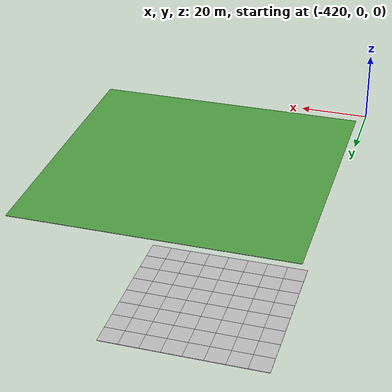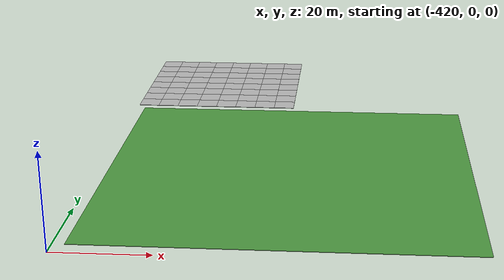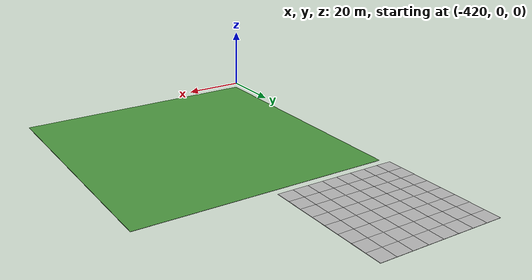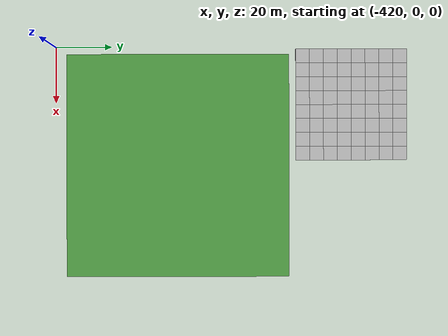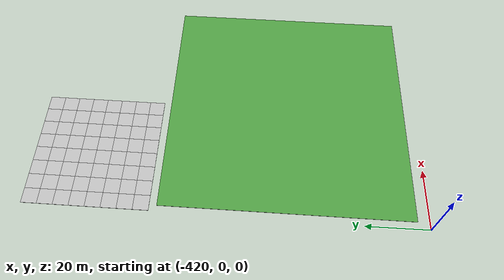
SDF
<sdf version="1.7">
 <world name="default">
  <model name="grass_plane_80x80">
   <pose>-377.556 43.6378 -0.05 0 -0 0</pose>
   <static>1</static>
   <link name="link">
    <collision name="collision"><geometry><box><size>80 80 0.1</size></box></geometry></collision>
    <visual name="grass">
     <cast_shadows>0</cast_shadows>
     <geometry><box><size>80 80 0.1</size></box></geometry>
     <material>
      <script><uri>file://media/materials/scripts/gazebo.material</uri><name>Gazebo/Grass</name></script>
     </material>
    </visual>
   </link>
  </model>
  <model name="mud_plane_40x40_18">
   <model name="mud_plane_20x20">
    <model name="mud_plane">
     <static>1</static>
     <link name="link">
      <collision name="collision"><geometry><box><size>10 10 0.1</size></box></geometry></collision>
      <visual name="visual_1">
       <pose>-2.5 2.5 -0.05 0 -0 0</pose>
       <cast_shadows>0</cast_shadows>
       <geometry><box><size>5 5 0.1</size></box></geometry>
       <material>
        <script>
         <uri>model://mud_plane/materials/scripts</uri>
         <uri>model://mud_plane/materials/textures</uri>
         <name>vrc/mud</name>
        </script>
       </material>
      </visual>
      <visual name="visual_2">
       <pose>2.5 2.5 -0.05 0 -0 0</pose>
       <cast_shadows>0</cast_shadows>
       <geometry><box><size>5 5 0.1</size></box></geometry>
       <material>
        <script>
         <uri>model://mud_plane/materials/scripts</uri>
         <uri>model://mud_plane/materials/textures</uri>
         <name>vrc/mud</name>
        </script>
       </material>
      </visual>
      <visual name="visual_3">
       <pose>2.5 -2.5 -0.05 0 -0 0</pose>
       <cast_shadows>0</cast_shadows>
       <geometry><box><size>5 5 0.1</size></box></geometry>
       <material>
        <script>
         <uri>model://mud_plane/materials/scripts</uri>
         <uri>model://mud_plane/materials/textures</uri>
         <name>vrc/mud</name>
        </script>
       </material>
      </visual>
      <visual name="visual_4">
       <pose>-2.5 -2.5 -0.05 0 -0 0</pose>
       <cast_shadows>0</cast_shadows>
       <geometry><box><size>5 5 0.1</size></box></geometry>
       <material>
        <script>
         <uri>model://mud_plane/materials/scripts</uri>
         <uri>model://mud_plane/materials/textures</uri>
         <name>vrc/mud</name>
        </script>
       </material>
      </visual>
     </link>
     <pose>-4.99986 -4.99991 0 0 -0 0</pose>
    </model>
    <model name="mud_plane_0">
     <static>1</static>
     <link name="link">
      <collision name="collision"><geometry><box><size>10 10 0.1</size></box></geometry></collision>
      <visual name="visual_1">
       <pose>-2.5 2.5 -0.05 0 -0 0</pose>
       <cast_shadows>0</cast_shadows>
       <geometry><box><size>5 5 0.1</size></box></geometry>
       <material>
        <script>
         <uri>model://mud_plane/materials/scripts</uri>
         <uri>model://mud_plane/materials/textures</uri>
         <name>vrc/mud</name>
        </script>
       </material>
      </visual>
      <visual name="visual_2">
       <pose>2.5 2.5 -0.05 0 -0 0</pose>
       <cast_shadows>0</cast_shadows>
       <geometry><box><size>5 5 0.1</size></box></geometry>
       <material>
        <script>
         <uri>model://mud_plane/materials/scripts</uri>
         <uri>model://mud_plane/materials/textures</uri>
         <name>vrc/mud</name>
        </script>
       </material>
      </visual>
      <visual name="visual_3">
       <pose>2.5 -2.5 -0.05 0 -0 0</pose>
       <cast_shadows>0</cast_shadows>
       <geometry><box><size>5 5 0.1</size></box></geometry>
       <material>
        <script>
         <uri>model://mud_plane/materials/scripts</uri>
         <uri>model://mud_plane/materials/textures</uri>
         <name>vrc/mud</name>
        </script>
       </material>
      </visual>
      <visual name="visual_4">
       <pose>-2.5 -2.5 -0.05 0 -0 0</pose>
       <cast_shadows>0</cast_shadows>
       <geometry><box><size>5 5 0.1</size></box></geometry>
       <material>
        <script>
         <uri>model://mud_plane/materials/scripts</uri>
         <uri>model://mud_plane/materials/textures</uri>
         <name>vrc/mud</name>
        </script>
       </material>
      </visual>
     </link>
     <pose>-4.99946 4.99954 0 0 -0 0</pose>
    </model>
    <model name="mud_plane_1">
     <static>1</static>
     <link name="link">
      <collision name="collision"><geometry><box><size>10 10 0.1</size></box></geometry></collision>
      <visual name="visual_1">
       <pose>-2.5 2.5 -0.05 0 -0 0</pose>
       <cast_shadows>0</cast_shadows>
       <geometry><box><size>5 5 0.1</size></box></geometry>
       <material>
        <script>
         <uri>model://mud_plane/materials/scripts</uri>
         <uri>model://mud_plane/materials/textures</uri>
         <name>vrc/mud</name>
        </script>
       </material>
      </visual>
      <visual name="visual_2">
       <pose>2.5 2.5 -0.05 0 -0 0</pose>
       <cast_shadows>0</cast_shadows>
       <geometry><box><size>5 5 0.1</size></box></geometry>
       <material>
        <script>
         <uri>model://mud_plane/materials/scripts</uri>
         <uri>model://mud_plane/materials/textures</uri>
         <name>vrc/mud</name>
        </script>
       </material>
      </visual>
      <visual name="visual_3">
       <pose>2.5 -2.5 -0.05 0 -0 0</pose>
       <cast_shadows>0</cast_shadows>
       <geometry><box><size>5 5 0.1</size></box></geometry>
       <material>
        <script>
         <uri>model://mud_plane/materials/scripts</uri>
         <uri>model://mud_plane/materials/textures</uri>
         <name>vrc/mud</name>
        </script>
       </material>
      </visual>
      <visual name="visual_4">
       <pose>-2.5 -2.5 -0.05 0 -0 0</pose>
       <cast_shadows>0</cast_shadows>
       <geometry><box><size>5 5 0.1</size></box></geometry>
       <material>
        <script>
         <uri>model://mud_plane/materials/scripts</uri>
         <uri>model://mud_plane/materials/textures</uri>
         <name>vrc/mud</name>
        </script>
       </material>
      </visual>
     </link>
     <pose>4.99964 -4.99949 0 0 -0 0</pose>
    </model>
    <model name="mud_plane_2">
     <static>1</static>
     <link name="link">
      <collision name="collision"><geometry><box><size>10 10 0.1</size></box></geometry></collision>
      <visual name="visual_1">
       <pose>-2.5 2.5 -0.05 0 -0 0</pose>
       <cast_shadows>0</cast_shadows>
       <geometry><box><size>5 5 0.1</size></box></geometry>
       <material>
        <script>
         <uri>model://mud_plane/materials/scripts</uri>
         <uri>model://mud_plane/materials/textures</uri>
         <name>vrc/mud</name>
        </script>
       </material>
      </visual>
      <visual name="visual_2">
       <pose>2.5 2.5 -0.05 0 -0 0</pose>
       <cast_shadows>0</cast_shadows>
       <geometry><box><size>5 5 0.1</size></box></geometry>
       <material>
        <script>
         <uri>model://mud_plane/materials/scripts</uri>
         <uri>model://mud_plane/materials/textures</uri>
         <name>vrc/mud</name>
        </script>
       </material>
      </visual>
      <visual name="visual_3">
       <pose>2.5 -2.5 -0.05 0 -0 0</pose>
       <cast_shadows>0</cast_shadows>
       <geometry><box><size>5 5 0.1</size></box></geometry>
       <material>
        <script>
         <uri>model://mud_plane/materials/scripts</uri>
         <uri>model://mud_plane/materials/textures</uri>
         <name>vrc/mud</name>
        </script>
       </material>
      </visual>
      <visual name="visual_4">
       <pose>-2.5 -2.5 -0.05 0 -0 0</pose>
       <cast_shadows>0</cast_shadows>
       <geometry><box><size>5 5 0.1</size></box></geometry>
       <material>
        <script>
         <uri>model://mud_plane/materials/scripts</uri>
         <uri>model://mud_plane/materials/textures</uri>
         <name>vrc/mud</name>
        </script>
       </material>
      </visual>
     </link>
     <pose>4.99967 4.99986 0 0 -0 0</pose>
    </model>
    <static>0</static>
    <pose>-9.99895 9.99843 0 0 -0 0</pose>
   </model>
   <model name="mud_plane_20x20_0">
    <model name="mud_plane">
     <static>1</static>
     <link name="link">
      <collision name="collision"><geometry><box><size>10 10 0.1</size></box></geometry></collision>
      <visual name="visual_1">
       <pose>-2.5 2.5 -0.05 0 -0 0</pose>
       <cast_shadows>0</cast_shadows>
       <geometry><box><size>5 5 0.1</size></box></geometry>
       <material>
        <script>
         <uri>model://mud_plane/materials/scripts</uri>
         <uri>model://mud_plane/materials/textures</uri>
         <name>vrc/mud</name>
        </script>
       </material>
      </visual>
      <visual name="visual_2">
       <pose>2.5 2.5 -0.05 0 -0 0</pose>
       <cast_shadows>0</cast_shadows>
       <geometry><box><size>5 5 0.1</size></box></geometry>
       <material>
        <script>
         <uri>model://mud_plane/materials/scripts</uri>
         <uri>model://mud_plane/materials/textures</uri>
         <name>vrc/mud</name>
        </script>
       </material>
      </visual>
      <visual name="visual_3">
       <pose>2.5 -2.5 -0.05 0 -0 0</pose>
       <cast_shadows>0</cast_shadows>
       <geometry><box><size>5 5 0.1</size></box></geometry>
       <material>
        <script>
         <uri>model://mud_plane/materials/scripts</uri>
         <uri>model://mud_plane/materials/textures</uri>
         <name>vrc/mud</name>
        </script>
       </material>
      </visual>
      <visual name="visual_4">
       <pose>-2.5 -2.5 -0.05 0 -0 0</pose>
       <cast_shadows>0</cast_shadows>
       <geometry><box><size>5 5 0.1</size></box></geometry>
       <material>
        <script>
         <uri>model://mud_plane/materials/scripts</uri>
         <uri>model://mud_plane/materials/textures</uri>
         <name>vrc/mud</name>
        </script>
       </material>
      </visual>
     </link>
     <pose>-4.99986 -4.99991 0 0 -0 0</pose>
    </model>
    <model name="mud_plane_0">
     <static>1</static>
     <link name="link">
      <collision name="collision"><geometry><box><size>10 10 0.1</size></box></geometry></collision>
      <visual name="visual_1">
       <pose>-2.5 2.5 -0.05 0 -0 0</pose>
       <cast_shadows>0</cast_shadows>
       <geometry><box><size>5 5 0.1</size></box></geometry>
       <material>
        <script>
         <uri>model://mud_plane/materials/scripts</uri>
         <uri>model://mud_plane/materials/textures</uri>
         <name>vrc/mud</name>
        </script>
       </material>
      </visual>
      <visual name="visual_2">
       <pose>2.5 2.5 -0.05 0 -0 0</pose>
       <cast_shadows>0</cast_shadows>
       <geometry><box><size>5 5 0.1</size></box></geometry>
       <material>
        <script>
         <uri>model://mud_plane/materials/scripts</uri>
         <uri>model://mud_plane/materials/textures</uri>
         <name>vrc/mud</name>
        </script>
       </material>
      </visual>
      <visual name="visual_3">
       <pose>2.5 -2.5 -0.05 0 -0 0</pose>
       <cast_shadows>0</cast_shadows>
       <geometry><box><size>5 5 0.1</size></box></geometry>
       <material>
        <script>
         <uri>model://mud_plane/materials/scripts</uri>
         <uri>model://mud_plane/materials/textures</uri>
         <name>vrc/mud</name>
        </script>
       </material>
      </visual>
      <visual name="visual_4">
       <pose>-2.5 -2.5 -0.05 0 -0 0</pose>
       <cast_shadows>0</cast_shadows>
       <geometry><box><size>5 5 0.1</size></box></geometry>
       <material>
        <script>
         <uri>model://mud_plane/materials/scripts</uri>
         <uri>model://mud_plane/materials/textures</uri>
         <name>vrc/mud</name>
        </script>
       </material>
      </visual>
     </link>
     <pose>-4.99946 4.99954 0 0 -0 0</pose>
    </model>
    <model name="mud_plane_1">
     <static>1</static>
     <link name="link">
      <collision name="collision"><geometry><box><size>10 10 0.1</size></box></geometry></collision>
      <visual name="visual_1">
       <pose>-2.5 2.5 -0.05 0 -0 0</pose>
       <cast_shadows>0</cast_shadows>
       <geometry><box><size>5 5 0.1</size></box></geometry>
       <material>
        <script>
         <uri>model://mud_plane/materials/scripts</uri>
         <uri>model://mud_plane/materials/textures</uri>
         <name>vrc/mud</name>
        </script>
       </material>
      </visual>
      <visual name="visual_2">
       <pose>2.5 2.5 -0.05 0 -0 0</pose>
       <cast_shadows>0</cast_shadows>
       <geometry><box><size>5 5 0.1</size></box></geometry>
       <material>
        <script>
         <uri>model://mud_plane/materials/scripts</uri>
         <uri>model://mud_plane/materials/textures</uri>
         <name>vrc/mud</name>
        </script>
       </material>
      </visual>
      <visual name="visual_3">
       <pose>2.5 -2.5 -0.05 0 -0 0</pose>
       <cast_shadows>0</cast_shadows>
       <geometry><box><size>5 5 0.1</size></box></geometry>
       <material>
        <script>
         <uri>model://mud_plane/materials/scripts</uri>
         <uri>model://mud_plane/materials/textures</uri>
         <name>vrc/mud</name>
        </script>
       </material>
      </visual>
      <visual name="visual_4">
       <pose>-2.5 -2.5 -0.05 0 -0 0</pose>
       <cast_shadows>0</cast_shadows>
       <geometry><box><size>5 5 0.1</size></box></geometry>
       <material>
        <script>
         <uri>model://mud_plane/materials/scripts</uri>
         <uri>model://mud_plane/materials/textures</uri>
         <name>vrc/mud</name>
        </script>
       </material>
      </visual>
     </link>
     <pose>4.99964 -4.99949 0 0 -0 0</pose>
    </model>
    <model name="mud_plane_2">
     <static>1</static>
     <link name="link">
      <collision name="collision"><geometry><box><size>10 10 0.1</size></box></geometry></collision>
      <visual name="visual_1">
       <pose>-2.5 2.5 -0.05 0 -0 0</pose>
       <cast_shadows>0</cast_shadows>
       <geometry><box><size>5 5 0.1</size></box></geometry>
       <material>
        <script>
         <uri>model://mud_plane/materials/scripts</uri>
         <uri>model://mud_plane/materials/textures</uri>
         <name>vrc/mud</name>
        </script>
       </material>
      </visual>
      <visual name="visual_2">
       <pose>2.5 2.5 -0.05 0 -0 0</pose>
       <cast_shadows>0</cast_shadows>
       <geometry><box><size>5 5 0.1</size></box></geometry>
       <material>
        <script>
         <uri>model://mud_plane/materials/scripts</uri>
         <uri>model://mud_plane/materials/textures</uri>
         <name>vrc/mud</name>
        </script>
       </material>
      </visual>
      <visual name="visual_3">
       <pose>2.5 -2.5 -0.05 0 -0 0</pose>
       <cast_shadows>0</cast_shadows>
       <geometry><box><size>5 5 0.1</size></box></geometry>
       <material>
        <script>
         <uri>model://mud_plane/materials/scripts</uri>
         <uri>model://mud_plane/materials/textures</uri>
         <name>vrc/mud</name>
        </script>
       </material>
      </visual>
      <visual name="visual_4">
       <pose>-2.5 -2.5 -0.05 0 -0 0</pose>
       <cast_shadows>0</cast_shadows>
       <geometry><box><size>5 5 0.1</size></box></geometry>
       <material>
        <script>
         <uri>model://mud_plane/materials/scripts</uri>
         <uri>model://mud_plane/materials/textures</uri>
         <name>vrc/mud</name>
        </script>
       </material>
      </visual>
     </link>
     <pose>4.99967 4.99986 0 0 -0 0</pose>
    </model>
    <static>0</static>
    <pose>9.99933 9.9997 0 0 -0 0</pose>
   </model>
   <model name="mud_plane_20x20_1">
    <model name="mud_plane">
     <static>1</static>
     <link name="link">
      <collision name="collision"><geometry><box><size>10 10 0.1</size></box></geometry></collision>
      <visual name="visual_1">
       <pose>-2.5 2.5 -0.05 0 -0 0</pose>
       <cast_shadows>0</cast_shadows>
       <geometry><box><size>5 5 0.1</size></box></geometry>
       <material>
        <script>
         <uri>model://mud_plane/materials/scripts</uri>
         <uri>model://mud_plane/materials/textures</uri>
         <name>vrc/mud</name>
        </script>
       </material>
      </visual>
      <visual name="visual_2">
       <pose>2.5 2.5 -0.05 0 -0 0</pose>
       <cast_shadows>0</cast_shadows>
       <geometry><box><size>5 5 0.1</size></box></geometry>
       <material>
        <script>
         <uri>model://mud_plane/materials/scripts</uri>
         <uri>model://mud_plane/materials/textures</uri>
         <name>vrc/mud</name>
        </script>
       </material>
      </visual>
      <visual name="visual_3">
       <pose>2.5 -2.5 -0.05 0 -0 0</pose>
       <cast_shadows>0</cast_shadows>
       <geometry><box><size>5 5 0.1</size></box></geometry>
       <material>
        <script>
         <uri>model://mud_plane/materials/scripts</uri>
         <uri>model://mud_plane/materials/textures</uri>
         <name>vrc/mud</name>
        </script>
       </material>
      </visual>
      <visual name="visual_4">
       <pose>-2.5 -2.5 -0.05 0 -0 0</pose>
       <cast_shadows>0</cast_shadows>
       <geometry><box><size>5 5 0.1</size></box></geometry>
       <material>
        <script>
         <uri>model://mud_plane/materials/scripts</uri>
         <uri>model://mud_plane/materials/textures</uri>
         <name>vrc/mud</name>
        </script>
       </material>
      </visual>
     </link>
     <pose>-4.99986 -4.99991 0 0 -0 0</pose>
    </model>
    <model name="mud_plane_0">
     <static>1</static>
     <link name="link">
      <collision name="collision"><geometry><box><size>10 10 0.1</size></box></geometry></collision>
      <visual name="visual_1">
       <pose>-2.5 2.5 -0.05 0 -0 0</pose>
       <cast_shadows>0</cast_shadows>
       <geometry><box><size>5 5 0.1</size></box></geometry>
       <material>
        <script>
         <uri>model://mud_plane/materials/scripts</uri>
         <uri>model://mud_plane/materials/textures</uri>
         <name>vrc/mud</name>
        </script>
       </material>
      </visual>
      <visual name="visual_2">
       <pose>2.5 2.5 -0.05 0 -0 0</pose>
       <cast_shadows>0</cast_shadows>
       <geometry><box><size>5 5 0.1</size></box></geometry>
       <material>
        <script>
         <uri>model://mud_plane/materials/scripts</uri>
         <uri>model://mud_plane/materials/textures</uri>
         <name>vrc/mud</name>
        </script>
       </material>
      </visual>
      <visual name="visual_3">
       <pose>2.5 -2.5 -0.05 0 -0 0</pose>
       <cast_shadows>0</cast_shadows>
       <geometry><box><size>5 5 0.1</size></box></geometry>
       <material>
        <script>
         <uri>model://mud_plane/materials/scripts</uri>
         <uri>model://mud_plane/materials/textures</uri>
         <name>vrc/mud</name>
        </script>
       </material>
      </visual>
      <visual name="visual_4">
       <pose>-2.5 -2.5 -0.05 0 -0 0</pose>
       <cast_shadows>0</cast_shadows>
       <geometry><box><size>5 5 0.1</size></box></geometry>
       <material>
        <script>
         <uri>model://mud_plane/materials/scripts</uri>
         <uri>model://mud_plane/materials/textures</uri>
         <name>vrc/mud</name>
        </script>
       </material>
      </visual>
     </link>
     <pose>-4.99946 4.99954 0 0 -0 0</pose>
    </model>
    <model name="mud_plane_1">
     <static>1</static>
     <link name="link">
      <collision name="collision"><geometry><box><size>10 10 0.1</size></box></geometry></collision>
      <visual name="visual_1">
       <pose>-2.5 2.5 -0.05 0 -0 0</pose>
       <cast_shadows>0</cast_shadows>
       <geometry><box><size>5 5 0.1</size></box></geometry>
       <material>
        <script>
         <uri>model://mud_plane/materials/scripts</uri>
         <uri>model://mud_plane/materials/textures</uri>
         <name>vrc/mud</name>
        </script>
       </material>
      </visual>
      <visual name="visual_2">
       <pose>2.5 2.5 -0.05 0 -0 0</pose>
       <cast_shadows>0</cast_shadows>
       <geometry><box><size>5 5 0.1</size></box></geometry>
       <material>
        <script>
         <uri>model://mud_plane/materials/scripts</uri>
         <uri>model://mud_plane/materials/textures</uri>
         <name>vrc/mud</name>
        </script>
       </material>
      </visual>
      <visual name="visual_3">
       <pose>2.5 -2.5 -0.05 0 -0 0</pose>
       <cast_shadows>0</cast_shadows>
       <geometry><box><size>5 5 0.1</size></box></geometry>
       <material>
        <script>
         <uri>model://mud_plane/materials/scripts</uri>
         <uri>model://mud_plane/materials/textures</uri>
         <name>vrc/mud</name>
        </script>
       </material>
      </visual>
      <visual name="visual_4">
       <pose>-2.5 -2.5 -0.05 0 -0 0</pose>
       <cast_shadows>0</cast_shadows>
       <geometry><box><size>5 5 0.1</size></box></geometry>
       <material>
        <script>
         <uri>model://mud_plane/materials/scripts</uri>
         <uri>model://mud_plane/materials/textures</uri>
         <name>vrc/mud</name>
        </script>
       </material>
      </visual>
     </link>
     <pose>4.99964 -4.99949 0 0 -0 0</pose>
    </model>
    <model name="mud_plane_2">
     <static>1</static>
     <link name="link">
      <collision name="collision"><geometry><box><size>10 10 0.1</size></box></geometry></collision>
      <visual name="visual_1">
       <pose>-2.5 2.5 -0.05 0 -0 0</pose>
       <cast_shadows>0</cast_shadows>
       <geometry><box><size>5 5 0.1</size></box></geometry>
       <material>
        <script>
         <uri>model://mud_plane/materials/scripts</uri>
         <uri>model://mud_plane/materials/textures</uri>
         <name>vrc/mud</name>
        </script>
       </material>
      </visual>
      <visual name="visual_2">
       <pose>2.5 2.5 -0.05 0 -0 0</pose>
       <cast_shadows>0</cast_shadows>
       <geometry><box><size>5 5 0.1</size></box></geometry>
       <material>
        <script>
         <uri>model://mud_plane/materials/scripts</uri>
         <uri>model://mud_plane/materials/textures</uri>
         <name>vrc/mud</name>
        </script>
       </material>
      </visual>
      <visual name="visual_3">
       <pose>2.5 -2.5 -0.05 0 -0 0</pose>
       <cast_shadows>0</cast_shadows>
       <geometry><box><size>5 5 0.1</size></box></geometry>
       <material>
        <script>
         <uri>model://mud_plane/materials/scripts</uri>
         <uri>model://mud_plane/materials/textures</uri>
         <name>vrc/mud</name>
        </script>
       </material>
      </visual>
      <visual name="visual_4">
       <pose>-2.5 -2.5 -0.05 0 -0 0</pose>
       <cast_shadows>0</cast_shadows>
       <geometry><box><size>5 5 0.1</size></box></geometry>
       <material>
        <script>
         <uri>model://mud_plane/materials/scripts</uri>
         <uri>model://mud_plane/materials/textures</uri>
         <name>vrc/mud</name>
        </script>
       </material>
      </visual>
     </link>
     <pose>4.99967 4.99986 0 0 -0 0</pose>
    </model>
    <static>0</static>
    <pose>9.9993 -9.99877 0 0 -0 0</pose>
   </model>
   <model name="mud_plane_20x20_2">
    <model name="mud_plane">
     <static>1</static>
     <link name="link">
      <collision name="collision"><geometry><box><size>10 10 0.1</size></box></geometry></collision>
      <visual name="visual_1">
       <pose>-2.5 2.5 -0.05 0 -0 0</pose>
       <cast_shadows>0</cast_shadows>
       <geometry><box><size>5 5 0.1</size></box></geometry>
       <material>
        <script>
         <uri>model://mud_plane/materials/scripts</uri>
         <uri>model://mud_plane/materials/textures</uri>
         <name>vrc/mud</name>
        </script>
       </material>
      </visual>
      <visual name="visual_2">
       <pose>2.5 2.5 -0.05 0 -0 0</pose>
       <cast_shadows>0</cast_shadows>
       <geometry><box><size>5 5 0.1</size></box></geometry>
       <material>
        <script>
         <uri>model://mud_plane/materials/scripts</uri>
         <uri>model://mud_plane/materials/textures</uri>
         <name>vrc/mud</name>
        </script>
       </material>
      </visual>
      <visual name="visual_3">
       <pose>2.5 -2.5 -0.05 0 -0 0</pose>
       <cast_shadows>0</cast_shadows>
       <geometry><box><size>5 5 0.1</size></box></geometry>
       <material>
        <script>
         <uri>model://mud_plane/materials/scripts</uri>
         <uri>model://mud_plane/materials/textures</uri>
         <name>vrc/mud</name>
        </script>
       </material>
      </visual>
      <visual name="visual_4">
       <pose>-2.5 -2.5 -0.05 0 -0 0</pose>
       <cast_shadows>0</cast_shadows>
       <geometry><box><size>5 5 0.1</size></box></geometry>
       <material>
        <script>
         <uri>model://mud_plane/materials/scripts</uri>
         <uri>model://mud_plane/materials/textures</uri>
         <name>vrc/mud</name>
        </script>
       </material>
      </visual>
     </link>
     <pose>-4.99986 -4.99991 0 0 -0 0</pose>
    </model>
    <model name="mud_plane_0">
     <static>1</static>
     <link name="link">
      <collision name="collision"><geometry><box><size>10 10 0.1</size></box></geometry></collision>
      <visual name="visual_1">
       <pose>-2.5 2.5 -0.05 0 -0 0</pose>
       <cast_shadows>0</cast_shadows>
       <geometry><box><size>5 5 0.1</size></box></geometry>
       <material>
        <script>
         <uri>model://mud_plane/materials/scripts</uri>
         <uri>model://mud_plane/materials/textures</uri>
         <name>vrc/mud</name>
        </script>
       </material>
      </visual>
      <visual name="visual_2">
       <pose>2.5 2.5 -0.05 0 -0 0</pose>
       <cast_shadows>0</cast_shadows>
       <geometry><box><size>5 5 0.1</size></box></geometry>
       <material>
        <script>
         <uri>model://mud_plane/materials/scripts</uri>
         <uri>model://mud_plane/materials/textures</uri>
         <name>vrc/mud</name>
        </script>
       </material>
      </visual>
      <visual name="visual_3">
       <pose>2.5 -2.5 -0.05 0 -0 0</pose>
       <cast_shadows>0</cast_shadows>
       <geometry><box><size>5 5 0.1</size></box></geometry>
       <material>
        <script>
         <uri>model://mud_plane/materials/scripts</uri>
         <uri>model://mud_plane/materials/textures</uri>
         <name>vrc/mud</name>
        </script>
       </material>
      </visual>
      <visual name="visual_4">
       <pose>-2.5 -2.5 -0.05 0 -0 0</pose>
       <cast_shadows>0</cast_shadows>
       <geometry><box><size>5 5 0.1</size></box></geometry>
       <material>
        <script>
         <uri>model://mud_plane/materials/scripts</uri>
         <uri>model://mud_plane/materials/textures</uri>
         <name>vrc/mud</name>
        </script>
       </material>
      </visual>
     </link>
     <pose>-4.99946 4.99954 0 0 -0 0</pose>
    </model>
    <model name="mud_plane_1">
     <static>1</static>
     <link name="link">
      <collision name="collision"><geometry><box><size>10 10 0.1</size></box></geometry></collision>
      <visual name="visual_1">
       <pose>-2.5 2.5 -0.05 0 -0 0</pose>
       <cast_shadows>0</cast_shadows>
       <geometry><box><size>5 5 0.1</size></box></geometry>
       <material>
        <script>
         <uri>model://mud_plane/materials/scripts</uri>
         <uri>model://mud_plane/materials/textures</uri>
         <name>vrc/mud</name>
        </script>
       </material>
      </visual>
      <visual name="visual_2">
       <pose>2.5 2.5 -0.05 0 -0 0</pose>
       <cast_shadows>0</cast_shadows>
       <geometry><box><size>5 5 0.1</size></box></geometry>
       <material>
        <script>
         <uri>model://mud_plane/materials/scripts</uri>
         <uri>model://mud_plane/materials/textures</uri>
         <name>vrc/mud</name>
        </script>
       </material>
      </visual>
      <visual name="visual_3">
       <pose>2.5 -2.5 -0.05 0 -0 0</pose>
       <cast_shadows>0</cast_shadows>
       <geometry><box><size>5 5 0.1</size></box></geometry>
       <material>
        <script>
         <uri>model://mud_plane/materials/scripts</uri>
         <uri>model://mud_plane/materials/textures</uri>
         <name>vrc/mud</name>
        </script>
       </material>
      </visual>
      <visual name="visual_4">
       <pose>-2.5 -2.5 -0.05 0 -0 0</pose>
       <cast_shadows>0</cast_shadows>
       <geometry><box><size>5 5 0.1</size></box></geometry>
       <material>
        <script>
         <uri>model://mud_plane/materials/scripts</uri>
         <uri>model://mud_plane/materials/textures</uri>
         <name>vrc/mud</name>
        </script>
       </material>
      </visual>
     </link>
     <pose>4.99964 -4.99949 0 0 -0 0</pose>
    </model>
    <model name="mud_plane_2">
     <static>1</static>
     <link name="link">
      <collision name="collision"><geometry><box><size>10 10 0.1</size></box></geometry></collision>
      <visual name="visual_1">
       <pose>-2.5 2.5 -0.05 0 -0 0</pose>
       <cast_shadows>0</cast_shadows>
       <geometry><box><size>5 5 0.1</size></box></geometry>
       <material>
        <script>
         <uri>model://mud_plane/materials/scripts</uri>
         <uri>model://mud_plane/materials/textures</uri>
         <name>vrc/mud</name>
        </script>
       </material>
      </visual>
      <visual name="visual_2">
       <pose>2.5 2.5 -0.05 0 -0 0</pose>
       <cast_shadows>0</cast_shadows>
       <geometry><box><size>5 5 0.1</size></box></geometry>
       <material>
        <script>
         <uri>model://mud_plane/materials/scripts</uri>
         <uri>model://mud_plane/materials/textures</uri>
         <name>vrc/mud</name>
        </script>
       </material>
      </visual>
      <visual name="visual_3">
       <pose>2.5 -2.5 -0.05 0 -0 0</pose>
       <cast_shadows>0</cast_shadows>
       <geometry><box><size>5 5 0.1</size></box></geometry>
       <material>
        <script>
         <uri>model://mud_plane/materials/scripts</uri>
         <uri>model://mud_plane/materials/textures</uri>
         <name>vrc/mud</name>
        </script>
       </material>
      </visual>
      <visual name="visual_4">
       <pose>-2.5 -2.5 -0.05 0 -0 0</pose>
       <cast_shadows>0</cast_shadows>
       <geometry><box><size>5 5 0.1</size></box></geometry>
       <material>
        <script>
         <uri>model://mud_plane/materials/scripts</uri>
         <uri>model://mud_plane/materials/textures</uri>
         <name>vrc/mud</name>
        </script>
       </material>
      </visual>
     </link>
     <pose>4.99967 4.99986 0 0 -0 0</pose>
    </model>
    <static>0</static>
    <pose>-9.99969 -9.99935 0 0 -0 0</pose>
   </model>
   <static>0</static>
   <pose>-399.394 106.003 0 0 -0 0</pose>
  </model>
 </world>
</sdf>
